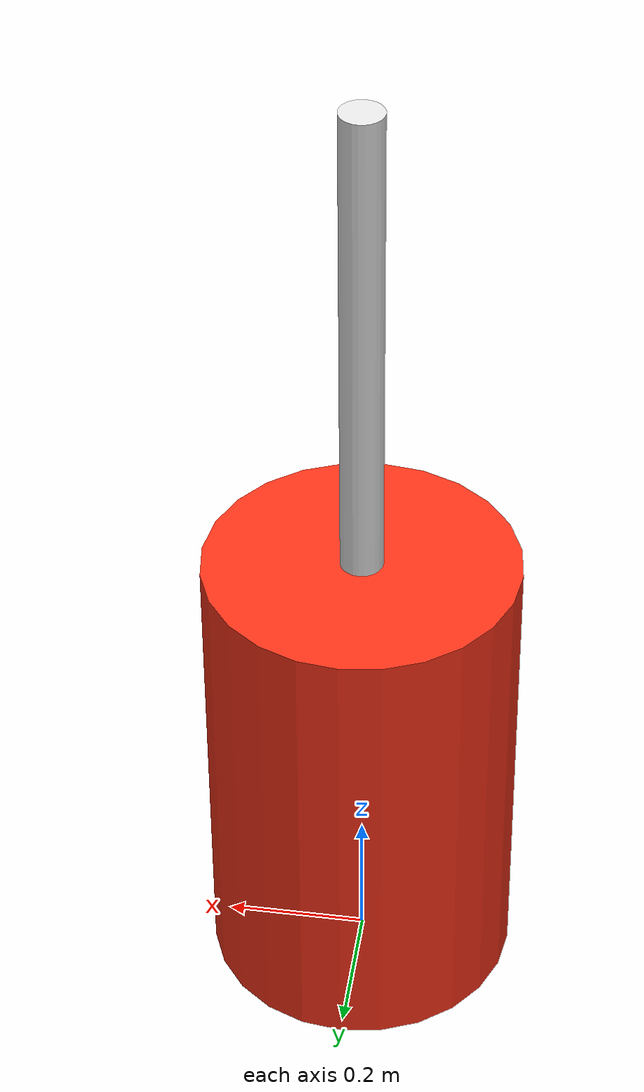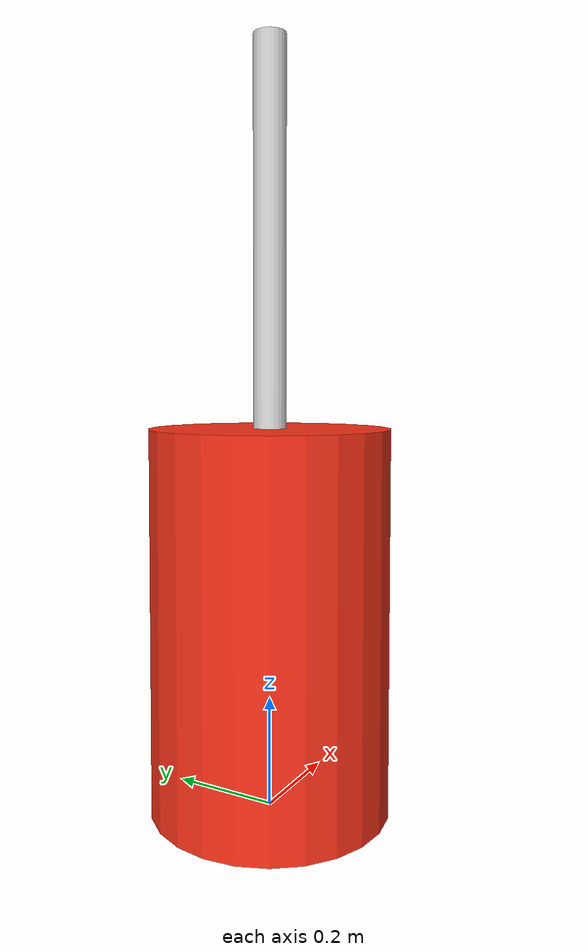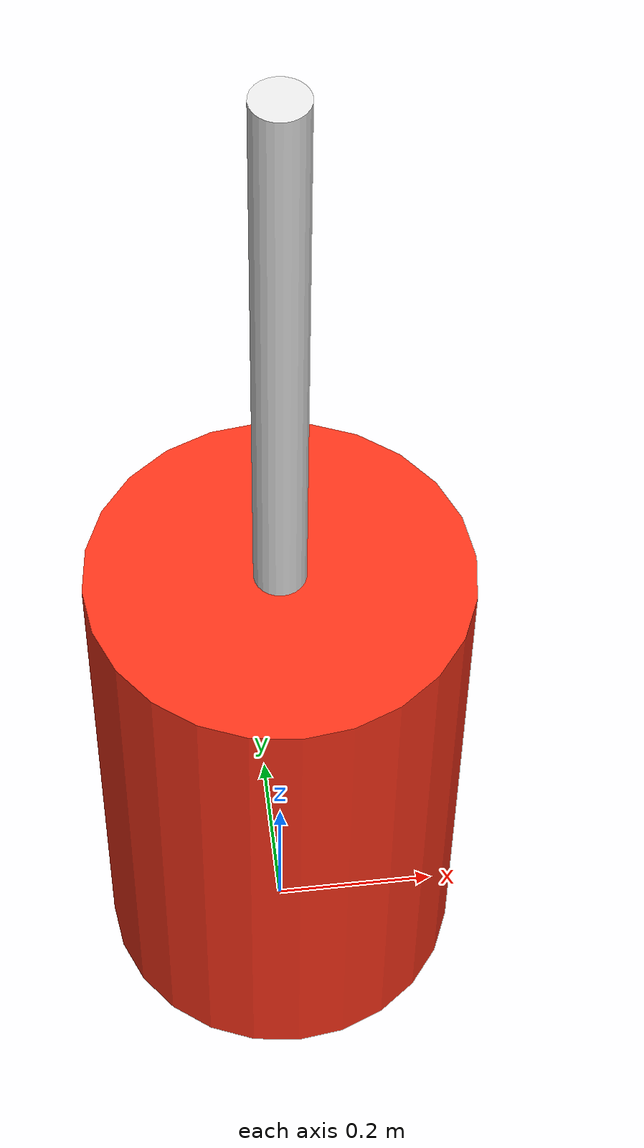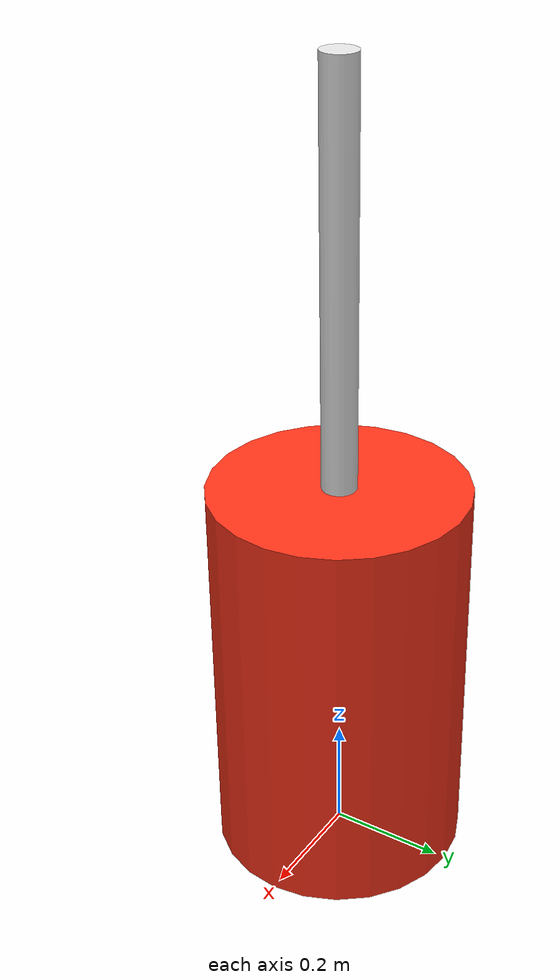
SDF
<?xml version="1.0"?>
<sdf version="1.9">
  <model name="buoy_marker">
    <static>true</static>

    <link name="base_link">
      <!-- Keep collision tiny so it doesn't matter physically -->
      <collision name="collision">
        <geometry>
          <cylinder>
            <radius>0.18</radius>
            <length>1.2</length>
          </cylinder>
        </geometry>
      </collision>

      <visual name="float_visual">
        <pose>0 0 0.35 0 0 0</pose>
        <geometry>
          <cylinder>
            <radius>0.22</radius>
            <length>0.7</length>
          </cylinder>
        </geometry>
        <material>
          <ambient>1.0 0.2 0.1 1.0</ambient>
          <diffuse>1.0 0.2 0.1 1.0</diffuse>
        </material>
      </visual>

      <visual name="mast_visual">
        <pose>0 0 1.0 0 0 0</pose>
        <geometry>
          <cylinder>
            <radius>0.03</radius>
            <length>0.8</length>
          </cylinder>
        </geometry>
        <material>
          <ambient>0.9 0.9 0.9 1.0</ambient>
          <diffuse>0.9 0.9 0.9 1.0</diffuse>
        </material>
      </visual>
    </link>
  </model>
</sdf>
